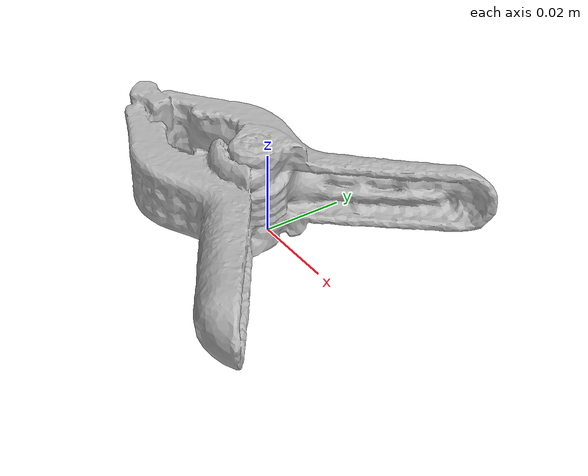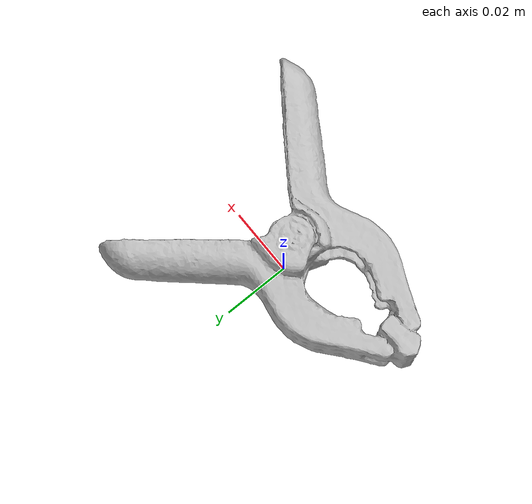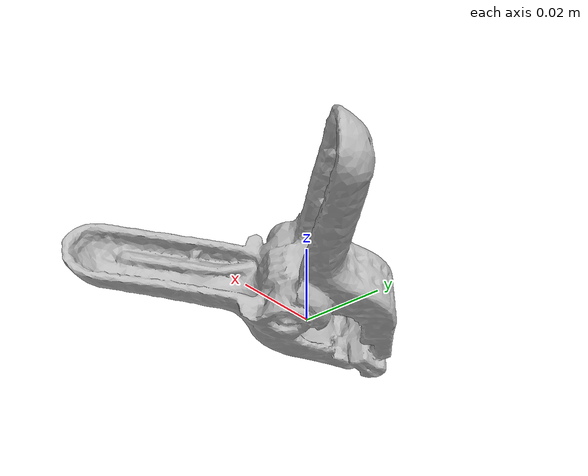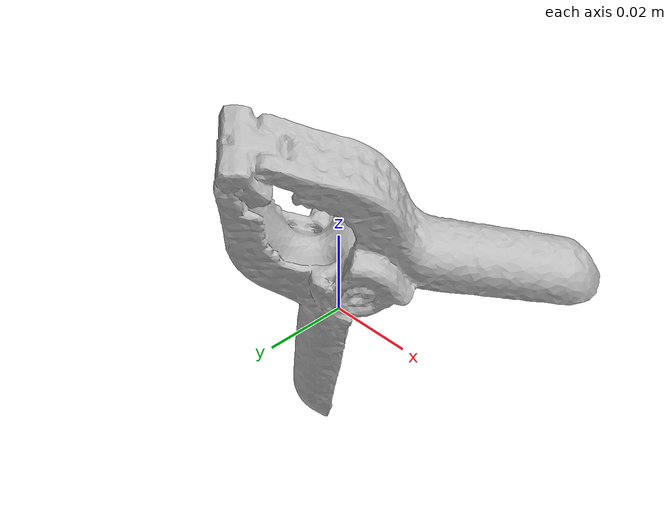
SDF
<?xml version="1.0" ?>
<sdf version='1.8'>
  <model name='ycb_050_medium_clamp'>
    <link name='body'>
      <inertial>
        <mass>0.059</mass>
        <pose>-0.00500051688 -0.00473560003 0.0128939349 0 0 0</pose>
        <inertia>
          <ixx>1.54378911009e-05</ixx>
          <ixy>-1.03733971521e-06</ixy>
          <ixz>-8.13743500539e-08</ixz>
          <iyy>2.27067283909e-05</iyy>
          <iyz>1.4716308619e-07</iyz>
          <izz>3.47516022875e-05</izz>
        </inertia>
      </inertial>
      <visual name='ycb_050_medium_clamp_visual'>
        <pose>-0.015828 0.010168 0.000276 0 0 0</pose>
        <geometry>
          <mesh>
            <uri>model://ycb_050_medium_clamp/meshes/textured.dae</uri>
          </mesh>
        </geometry>
      </visual>
      <collision name='ycb_050_medium_clamp_collision'>
        <pose>-0.015828 0.010168 0.000276 0 0 0</pose>
        <geometry>
          <mesh>
            <uri>model://ycb_050_medium_clamp/meshes/nontextured.stl</uri>
          </mesh>
        </geometry>
        <max_contacts>10</max_contacts>
        <surface>
          <contact>
            <ode>
              <kp>1e15</kp>
              <kd>1e13</kd>
            </ode>
          </contact>
        </surface>
      </collision>
    </link>
  </model>
</sdf>
